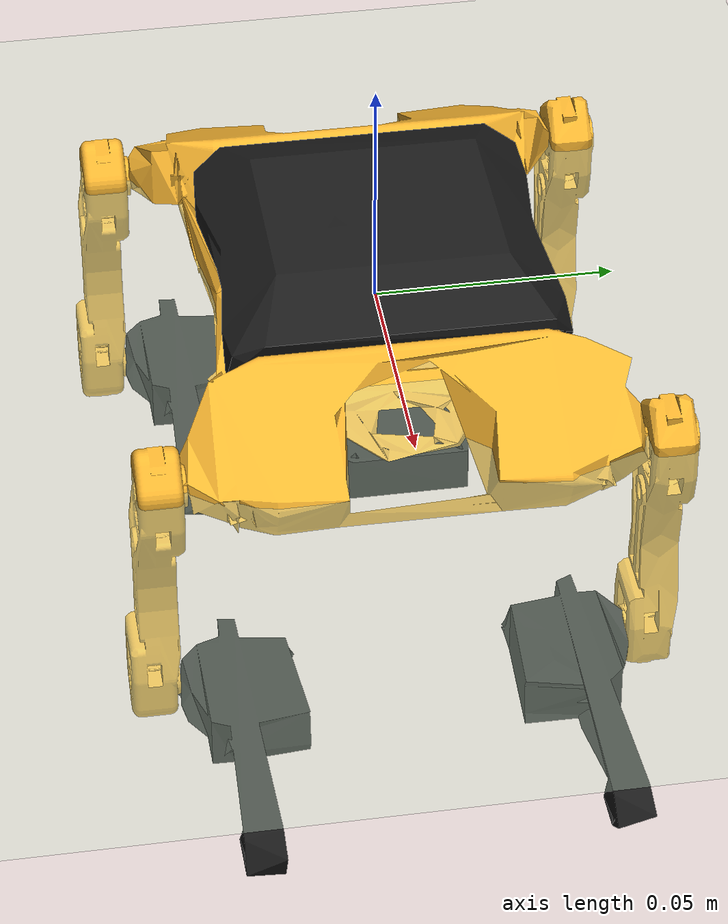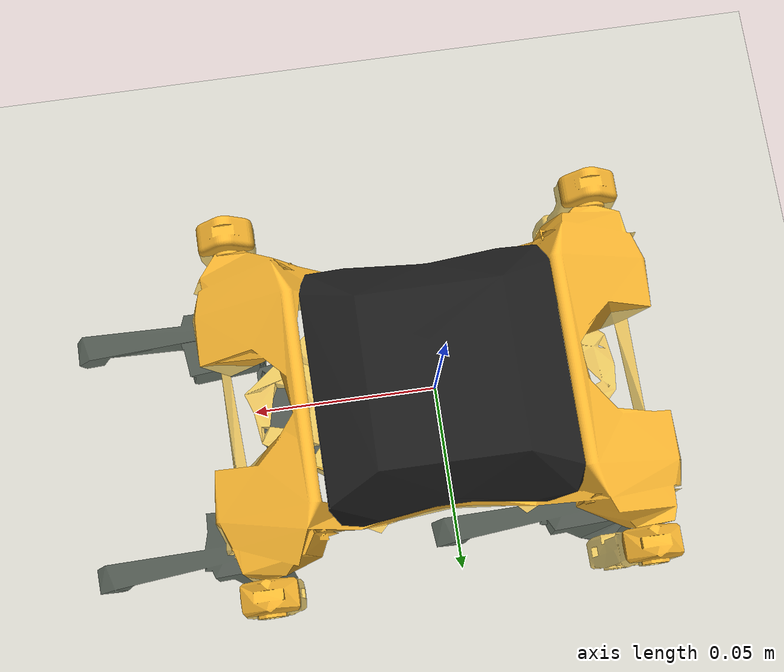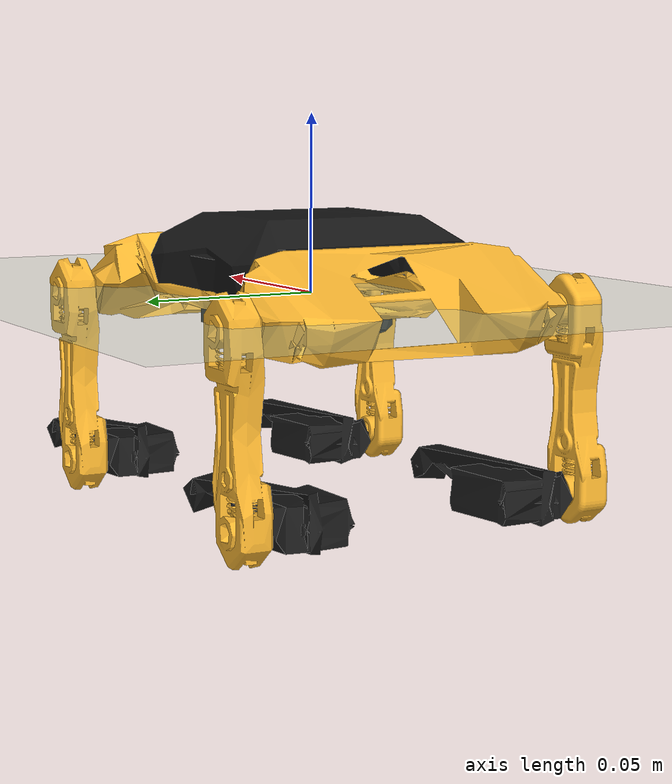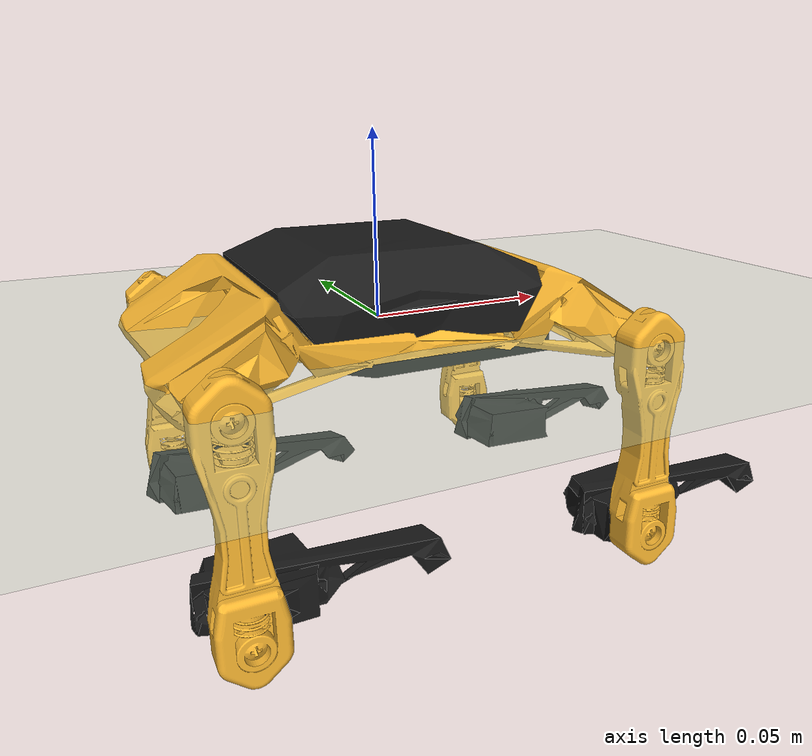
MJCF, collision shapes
<mujoco model="bittle">
  <compiler angle="radian" meshdir="assets/"/>

  <option cone="pyramidal" impratio="100"/>

  <default>
    <geom solref="-1000 -80" rgba="0.1 0.1 0.1 1.0"/>
    <motor ctrllimited="true" ctrlrange="-0.2941995 0.2941995"/>
    <joint damping="0.03" armature="0.003" frictionloss="0.00002"/>
  </default>

  <asset>
    <texture name="texplane" type="2d" builtin="checker" rgb1=".12 .14 .44" rgb2=".37 .55 1" width="100" height="100"/>
    <material name="MatPlane" reflectance="0.5" texture="texplane" texrepeat="1 1" texuniform="true"/>

    <mesh name="base_frame" file="base_frame.obj" scale="0.1 0.1 0.1"/>
    <mesh name="base_frame.001" file="base_frame.001.obj" scale="0.1 0.1 0.1"/>
    <mesh name="battery" file="battery.obj" scale="0.1 0.1 0.1"/>
    <mesh name="battery.001" file="battery.001.obj" scale="0.1 0.1 0.1"/>
    <mesh name="cover" file="cover.obj" scale="0.1 0.1 0.1"/>
    <mesh name="cover.001" file="cover.001.obj" scale="0.1 0.1 0.1"/>
    <mesh name="left_knee.001" file="left_knee.001.obj" scale="0.1 0.1 0.1"/>
    <mesh name="left_knee.002" file="left_knee.002.obj" scale="0.1 0.1 0.1"/>
    <mesh name="shoulder.001" file="shoulder.001.obj" scale="0.1 0.1 0.1"/>
    <mesh name="shoulder.004" file="shoulder.004.obj" scale="0.1 0.1 0.1"/>
    <mesh name="left_knee" file="left_knee.obj" scale="0.1 0.1 0.1"/>
    <mesh name="left_knee.003" file="left_knee.003.obj" scale="0.1 0.1 0.1"/>
    <mesh name="shoulder" file="shoulder.obj" scale="0.1 0.1 0.1"/>
    <mesh name="shoulder.007" file="shoulder.007.obj" scale="0.1 0.1 0.1"/>
    <mesh name="right_knee.001" file="right_knee.001.obj" scale="0.1 0.1 0.1"/>
    <mesh name="right_knee.002" file="right_knee.002.obj" scale="0.1 0.1 0.1"/>
    <mesh name="shoulder.002" file="shoulder.002.obj" scale="0.1 0.1 0.1"/>
    <mesh name="shoulder.005" file="shoulder.005.obj" scale="0.1 0.1 0.1"/>
    <mesh name="right_knee" file="right_knee.obj" scale="0.1 0.1 0.1"/>
    <mesh name="right_knee.003" file="right_knee.003.obj" scale="0.1 0.1 0.1"/>
    <mesh name="shoulder.003" file="shoulder.003.obj" scale="0.1 0.1 0.1"/>
    <mesh name="shoulder.006" file="shoulder.006.obj" scale="0.1 0.1 0.1"/>
  </asset>

  <worldbody>
    <geom name="floor" pos="0 0 0" condim="3" material="MatPlane" size="100 100 0.125" rgba="0.8 0.9 0.8 1" type="plane"/>
    <light cutoff="100" diffuse="1 1 1" dir="-0 0 -1.3" directional="true" exponent="1" pos="0 0 1.3" specular=".1 .1 .1" castshadow="false"/>
    <light name="spotlight" mode="targetbodycom" target="trunk" pos="0 -1 2"/>

    <body name="trunk" pos="0 0 0">
      <camera name="track" mode="trackcom" pos="0 -2 0" xyaxes="1 0 0 0 0 1"/>

      <freejoint/>

      <inertial pos="0.0 0.0 0.0" mass="0.108" fullinertia="0.0000613 0.0001562 0.0002107 0.0 0.0 -0.000002"/>

      <geom rgba="0.97 0.71 0.19 1.0" name="trunk_1" type="mesh" contype="0" conaffinity="0" group="1" density="0" mesh="base_frame"/>
      <geom rgba="0.97 0.71 0.19 1.0" name="trunk_2" type="mesh" mesh="base_frame.001"/>
      <geom name="trunk_3" pos="0.000047 -0.000917 -0.004848" type="mesh" contype="0" conaffinity="0" group="1" density="0" mesh="battery"/>
      <geom name="trunk_4" pos="0.000047 -0.000917 -0.004848" type="mesh" mesh="battery.001"/>
      <geom name="trunk_5" pos="0.00014 0 0.01251" type="mesh" contype="0" conaffinity="0" group="1" density="0" mesh="cover"/>
      <geom name="trunk_6" pos="0.00014 0 0.01251" type="mesh" mesh="cover.001"/>

      <body name="left-back-shoulder-link" pos="-0.051923  0.044596 -0.002102" quat="0.499998 0.5 -0.500002 -0.5">
        <inertial pos="-0.004372 -0.024575 0" quat="0.707107 0.707107 0 0" mass="0.006" diaginertia="0.0000044 0.0000044 2e-07"/>
        <joint name="left_back_shoulder_joint" pos="0 0 0" axis="-1 0 0" range="-1.5708 1.22173"/>
        <geom name="LB_thigh_1" pos="-0.004372 -0.024575 0" quat="0.499998 -0.5 0.5 0.500002" type="mesh" contype="0" conaffinity="0" group="1" density="0" mesh="shoulder.001" rgba="0.97 0.71 0.19 1.0"/>
        <geom name="LB_thigh_2" pos="-0.004372 -0.024575 0" quat="0.499998 -0.5 0.5 0.500002" type="mesh" mesh="shoulder.004" rgba="0.97 0.71 0.19 1.0"/>
        <body name="left-back-knee-link" pos="0 -0.049172 0">
          <inertial pos="0.014638 0 -0.008998" quat="0.637092 0.28669 0.644989 0.309696" mass="0.017" diaginertia="0.00000446667 0.00000446667 0.00000446667"/>
          <joint name="left_back_knee_joint" pos="0 0 0" axis="-1 0 0" range="-1.48353 1.22173"/>
          <geom name="LB_foot_1" pos="0.014638 0 -0.008998" quat="0.499998 -0.5 0.5 0.500002" type="mesh" contype="0" conaffinity="0" group="1" density="0" mesh="left_knee.001"/>
          <geom name="LB_foot_2" pos="0.014638 0 -0.008998" quat="0.499998 -0.5 0.5 0.500002" type="mesh" mesh="left_knee.002"/>
        </body>
      </body>
      <body name="left-front-shoulder-link" pos="0.052264 0.044596 -0.002102" quat="0.499998 0.5 -0.500002 -0.5">
        <inertial pos="-0.004372 -0.024575 0" quat="0.707107 0.707107 0 0" mass="0.006" diaginertia="0.0000044 0.0000044 2e-07"/>
        <joint name="left_front_shoulder_joint" pos="0 0 0" axis="-1 0 0" range="-1.5708 1.22173"/>
        <geom name="LF_thigh_1" pos="-0.004372 -0.024575 0" quat="0.499998 -0.5 0.5 0.500002" type="mesh" contype="0" conaffinity="0" group="1" density="0" mesh="shoulder" rgba="0.97 0.71 0.19 1.0"/>
        <geom name="LF_thigh_2" pos="-0.004372 -0.024575 0" quat="0.499998 -0.5 0.5 0.500002" type="mesh" mesh="shoulder.007" rgba="0.97 0.71 0.19 1.0"/>
        <body name="left-front-knee-link" pos="0 -0.049172 6e-06">
          <inertial pos="0.014614 0 -0.009232" quat="0.637092 0.28669 0.644989 0.309696" mass="0.017" diaginertia="0.00000446667 0.00000446667 0.00000446667"/>
          <joint name="left_front_knee_joint" pos="0 0 0" axis="-1 0 0" range="-1.48353 1.22173"/>
          <geom name="LF_foot_1" pos="0.014614 0 -0.009232" quat="0.499998 -0.5 0.5 0.500002" type="mesh" contype="0" conaffinity="0" group="1" density="0" mesh="left_knee"/>
          <geom name="LF_foot_2" pos="0.014614 0 -0.009232" quat="0.499998 -0.5 0.5 0.500002" type="mesh" mesh="left_knee.003"/>
        </body>
      </body>
      <body name="right-back-shoulder-link" pos="-0.051923 -0.045149 -0.002102" quat="0.499998 -0.5 0.500002 -0.5">
        <inertial pos="0.00777 0.024575 0" quat="0.707107 0.707107 0 0" mass="0.006" diaginertia="0.0000044 0.0000044 2e-07"/>
        <joint name="right_back_shoulder_joint" pos="0 0 0" axis="1 0 0" range="-1.22173 1.5708"/>
        <geom name="RB_thigh_1" pos="0.00777 0.024575 0" quat="0.499998 0.5 -0.5 0.500002" type="mesh" contype="0" conaffinity="0" group="1" density="0" mesh="shoulder.002" rgba="0.97 0.71 0.19 1.0"/>
        <geom name="RB_thigh_2" pos="0.00777 0.024575 0" quat="0.499998 0.5 -0.5 0.500002" type="mesh" mesh="shoulder.005" rgba="0.97 0.71 0.19 1.0"/>
        <body name="right-back-knee-link" pos="0.003996 0.049938 0.000015" quat="1.32679e-06 0 0 1">
          <inertial pos="0.01382 -0.000238 0.008426" quat="0.639078 0.292189 0.643573 0.303345" mass="0.017" diaginertia="0.0000045 0.0000045 0.0000045"/>
          <joint name="right_back_knee_joint" pos="0 0 0" axis="-1 0 0" range="-1.22173 1.48353"/>
          <geom name="RB_foot_1" pos="0.01382 -0.000238 0.008426" quat="0.499998 -0.5 -0.5 -0.500002" type="mesh" contype="0" conaffinity="0" group="1" density="0" mesh="right_knee.001"/>
          <geom name="RB_foot_2" pos="0.01382 -0.000238 0.008426" quat="0.499998 -0.5 -0.5 -0.500002" type="mesh" mesh="right_knee.002"/>
        </body>
      </body>
      <body name="right-front-shoulder-link" pos="0.052264 -0.045149 -0.002102" quat="0.499998 -0.5 0.500002 -0.5">
        <inertial pos="0.00777 0.024575 0" quat="0.707107 0.707107 0 0" mass="0.006" diaginertia="0.0000044 0.0000044 2e-07"/>
        <joint name="right_front_shoulder_joint" pos="0 0 0" axis="1 0 0" range="-1.22173 1.5708"/>
        <geom name="RF_thigh_1" pos="0.00777 0.024575 0" quat="0.499998 0.5 -0.5 0.500002" type="mesh" contype="0" conaffinity="0" group="1" density="0" mesh="shoulder.003" rgba="0.97 0.71 0.19 1.0"/>
        <geom name="RF_thigh_2" pos="0.00777 0.024575 0" quat="0.499998 0.5 -0.5 0.500002" type="mesh" mesh="shoulder.006" rgba="0.97 0.71 0.19 1.0"/>
        <body name="right-front-knee-link" pos="0.003996 0.049938 6e-06" quat="1.32679e-06 0 0 1">
          <inertial pos="0.01382 -0.000238 0.009497" quat="0.639078 0.292189 0.643573 0.303345" mass="0.017" diaginertia="0.0000045 0.0000045 0.0000045"/>
          <joint name="right_front_knee_joint" pos="0 0 0" axis="-1 0 0" range="-1.22173 1.48353"/>
          <geom name="RF_foot_1" pos="0.01382 -0.000238 0.009497" quat="0.499998 -0.5 -0.5 -0.500002" type="mesh" contype="0" conaffinity="0" group="1" density="0" mesh="right_knee"/>
          <geom name="RF_foot_2" pos="0.01382 -0.00238 0.009497" quat="0.499998 -0.5 -0.5 -0.500002" type="mesh" mesh="right_knee.003"/>
        </body>
      </body>
    </body>
  </worldbody>

  <contact>
    <exclude body1="trunk" body2="left-back-shoulder-link"/>
    <exclude body1="trunk" body2="left-front-shoulder-link"/>
    <exclude body1="trunk" body2="right-back-shoulder-link"/>
    <exclude body1="trunk" body2="right-front-shoulder-link"/>
    <exclude body1="trunk" body2="left-back-knee-link"/>
    <exclude body1="trunk" body2="left-front-knee-link"/>
    <exclude body1="trunk" body2="right-back-knee-link"/>
    <exclude body1="trunk" body2="right-front-knee-link"/>
  </contact>

  <actuator>
    <motor name="left_back_shoulder" joint="left_back_shoulder_joint"></motor>
    <motor name="left_back_knee" joint="left_back_knee_joint"></motor>
    <motor name="left_front_shoulder" joint="left_front_shoulder_joint"></motor>
    <motor name="left_front_knee" joint="left_front_knee_joint"></motor>
    <motor name="right_back_shoulder" joint="right_back_shoulder_joint"></motor>
    <motor name="right_back_knee" joint="right_back_knee_joint"></motor>
    <motor name="right_front_shoulder" joint="right_front_shoulder_joint"></motor>
    <motor name="right_front_knee" joint="right_front_knee_joint"></motor>
  </actuator>

  <keyframe>
    <key name="home" qpos="0 0 0.094 1 0 0 0 0.6 0.5 0.6 0.5 -0.6 -0.5 -0.6 -0.5"/>
  </keyframe>
</mujoco>
